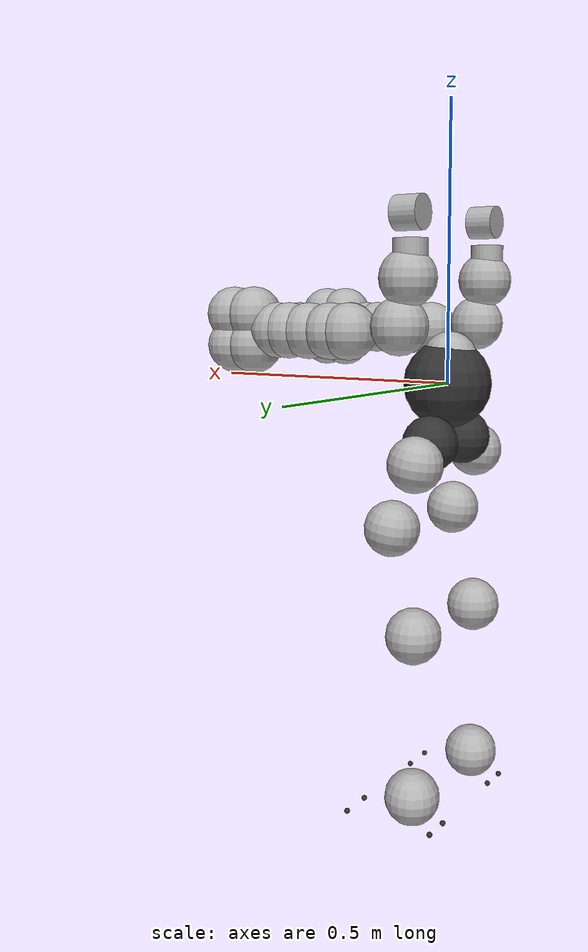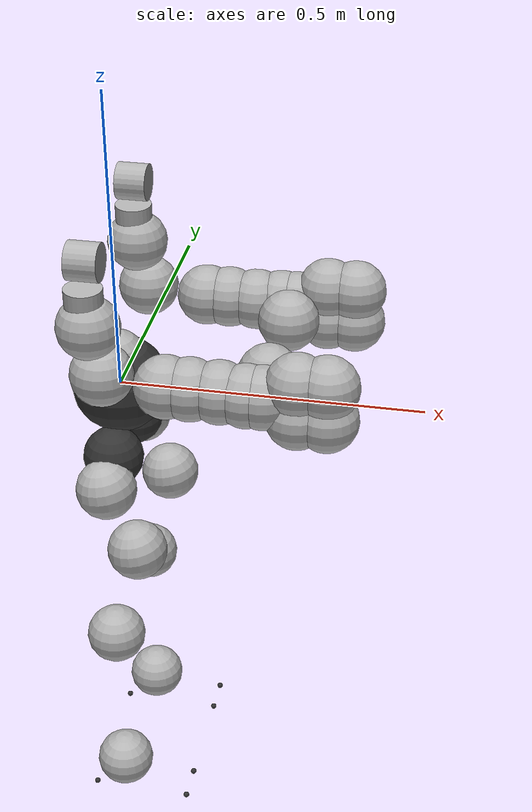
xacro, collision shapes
<robot name="g1_29dof_with_hand_rev_1_0">
  <material name="dark">
    <color rgba="0.2 0.2 0.2 1" />
  </material>
  <material name="white">
    <color rgba="0.7 0.7 0.7 1" />
  </material>

  <mujoco>
    <compiler meshdir="meshes" discardvisual="false" />
  </mujoco>

  <link name="base_link" />
  <joint name="base_joint" type="fixed">
    <parent link="base_link" />
    <child link="pelvis" />
    <origin xyz="0 0 0" rpy="0 0 0" />
  </joint>

  <link name="pelvis">
    <inertial>
      <origin xyz="0 0 -0.07605" rpy="0 0 0" />
      <mass value="3.813" />
      <inertia ixx="0.010549" ixy="0" ixz="2.1E-06" iyy="0.0093089" iyz="0" izz="0.0079184" />
    </inertial>
    <visual>
      <origin xyz="0 0 0" rpy="0 0 0" />
      <geometry>
        <mesh filename="package://g1_description/meshes/pelvis.STL" />
      </geometry>
      <material name="dark" />
    </visual>
    <collision>
      <origin xyz="0 0 0" rpy="0 0 0" />
      <geometry>
        <sphere radius="0.08" />
      </geometry>
    </collision>
  </link>

  <link name="pelvis_contour_link">
    <inertial>
      <origin xyz="0 0 0" rpy="0 0 0" />
      <mass value="0.001" />
      <inertia ixx="1e-7" ixy="0" ixz="0" iyy="1e-7" iyz="0" izz="1e-7" />
    </inertial>
    <visual>
      <origin xyz="0 0 0" rpy="0 0 0" />
      <geometry>
        <mesh filename="package://g1_description/meshes/pelvis_contour_link.STL" />
      </geometry>
      <material name="white" />
    </visual>
    <collision>
      <origin xyz="0 0 0" rpy="0 0 0" />
      <geometry>
        <sphere radius="0.05" /></geometry>
    </collision>
  </link>
  <joint name="pelvis_contour_joint" type="fixed">
    <parent link="pelvis" />
    <child link="pelvis_contour_link" />
  </joint>

  <link name="left_hip_pitch_link">
    <inertial>
      <origin xyz="0.002741 0.047791 -0.02606" rpy="0 0 0" />
      <mass value="1.35" />
      <inertia ixx="0.001811" ixy="3.68E-05" ixz="-3.44E-05" iyy="0.0014193" iyz="0.000171" izz="0.0012812" />
    </inertial>
    <visual>
      <origin xyz="0 0 0" rpy="0 0 0" />
      <geometry>
        <mesh filename="package://g1_description/meshes/left_hip_pitch_link.STL" />
      </geometry>
      <material name="dark" />
    </visual>
    <collision>
      <origin xyz="0 0 0" rpy="0 0 0" />
      <geometry>
        <sphere radius="0.05" /></geometry>
    </collision>
  </link>
  <joint name="left_hip_pitch_joint" type="revolute">
    <origin xyz="0 0.064452 -0.1027" rpy="0 0 0" />
    <parent link="pelvis" />
    <child link="left_hip_pitch_link" />
    <axis xyz="0 1 0" />
    <limit lower="-2.5307" upper="2.8798" effort="88" velocity="32" />
  </joint>
  <link name="left_hip_roll_link">
    <inertial>
      <origin xyz="0.029812 -0.001045 -0.087934" rpy="0 0 0" />
      <mass value="1.52" />
      <inertia ixx="0.0023773" ixy="-3.8E-06" ixz="-0.0003908" iyy="0.0024123" iyz="1.84E-05" izz="0.0016595" />
    </inertial>
    <visual>
      <origin xyz="0 0 0" rpy="0 0 0" />
      <geometry>
        <mesh filename="package://g1_description/meshes/left_hip_roll_link.STL" />
      </geometry>
      <material name="white" />
    </visual>
    <collision>
      <origin xyz="0 0 0" rpy="0 0 0" />
      <geometry>
        <sphere radius="0.05" /></geometry>
    </collision>
  </link>
  <joint name="left_hip_roll_joint" type="revolute">
    <origin xyz="0 0.052 -0.030465" rpy="0 -0.1749 0" />
    <parent link="left_hip_pitch_link" />
    <child link="left_hip_roll_link" />
    <axis xyz="1 0 0" />
    <limit lower="-0.5236" upper="2.9671" effort="139" velocity="20" />
  </joint>
  <link name="left_hip_yaw_link">
    <inertial>
      <origin xyz="-0.057709 -0.010981 -0.15078" rpy="0 0 0" />
      <mass value="1.702" />
      <inertia ixx="0.0057774" ixy="-0.0005411" ixz="-0.0023948" iyy="0.0076124" iyz="-0.0007072" izz="0.003149" />
    </inertial>
    <visual>
      <origin xyz="0 0 0" rpy="0 0 0" />
      <geometry>
        <mesh filename="package://g1_description/meshes/left_hip_yaw_link.STL" />
      </geometry>
      <material name="white" />
    </visual>
    <collision>
      <origin xyz="0 0 0" rpy="0 0 0" />
      <geometry>
        <sphere radius="0.05" /></geometry>
    </collision>
  </link>
  <joint name="left_hip_yaw_joint" type="revolute">
    <origin xyz="0.025001 0 -0.12412" rpy="0 0 0" />
    <parent link="left_hip_roll_link" />
    <child link="left_hip_yaw_link" />
    <axis xyz="0 0 1" />
    <limit lower="-2.7576" upper="2.7576" effort="88" velocity="32" />
  </joint>
  <link name="left_knee_link">
    <inertial>
      <origin xyz="0.005457 0.003964 -0.12074" rpy="0 0 0" />
      <mass value="1.932" />
      <inertia ixx="0.011329" ixy="4.82E-05" ixz="-4.49E-05" iyy="0.011277" iyz="-0.0007146" izz="0.0015168" />
    </inertial>
    <visual>
      <origin xyz="0 0 0" rpy="0 0 0" />
      <geometry>
        <mesh filename="package://g1_description/meshes/left_knee_link.STL" />
      </geometry>
      <material name="white" />
    </visual>
    <collision>
      <origin xyz="0 0 0" rpy="0 0 0" />
      <geometry>
        <sphere radius="0.05" /></geometry>
    </collision>
  </link>
  <joint name="left_knee_joint" type="revolute">
    <origin xyz="-0.078273 0.0021489 -0.17734" rpy="0 0.1749 0" />
    <parent link="left_hip_yaw_link" />
    <child link="left_knee_link" />
    <axis xyz="0 1 0" />
    <limit lower="-0.087267" upper="2.8798" effort="139" velocity="20" />
  </joint>
  <link name="left_ankle_pitch_link">
    <inertial>
      <origin xyz="-0.007269 0 0.011137" rpy="0 0 0" />
      <mass value="0.074" />
      <inertia ixx="8.4E-06" ixy="0" ixz="-2.9E-06" iyy="1.89E-05" iyz="0" izz="1.26E-05" />
    </inertial>
    <visual>
      <origin xyz="0 0 0" rpy="0 0 0" />
      <geometry>
        <mesh filename="package://g1_description/meshes/left_ankle_pitch_link.STL" />
      </geometry>
      <material name="white" />
    </visual>
    <collision>
      <origin xyz="0 0 0" rpy="0 0 0" />
      <geometry>
        <sphere radius="0.05" /></geometry>
    </collision>
  </link>
  <joint name="left_ankle_pitch_joint" type="revolute">
    <origin xyz="0 -9.4445E-05 -0.30001" rpy="0 0 0" />
    <parent link="left_knee_link" />
    <child link="left_ankle_pitch_link" />
    <axis xyz="0 1 0" />
    <limit lower="-0.87267" upper="0.5236" effort="35" velocity="30" />
  </joint>
  <link name="left_ankle_roll_link">
    <inertial>
      <origin xyz="0.026505 0 -0.016425" rpy="0 0 0" />
      <mass value="0.608" />
      <inertia ixx="0.0002231" ixy="2E-07" ixz="8.91E-05" iyy="0.0016161" iyz="-1E-07" izz="0.0016667" />
    </inertial>
    <visual>
      <origin xyz="0 0 0" rpy="0 0 0" />
      <geometry>
        <mesh filename="package://g1_description/meshes/left_ankle_roll_link.STL" />
      </geometry>
      <material name="dark" />
    </visual>
    <collision>
      <origin xyz="-0.05 0.025 -0.03" rpy="0 0 0" />
      <geometry>
        <sphere radius="0.005" />
      </geometry>
    </collision>
    <collision>
      <origin xyz="-0.05 -0.025 -0.03" rpy="0 0 0" />
      <geometry>
        <sphere radius="0.005" />
      </geometry>
    </collision>
    <collision>
      <origin xyz="0.12 0.03 -0.03" rpy="0 0 0" />
      <geometry>
        <sphere radius="0.005" />
      </geometry>
    </collision>
    <collision>
      <origin xyz="0.12 -0.03 -0.03" rpy="0 0 0" />
      <geometry>
        <sphere radius="0.005" />
      </geometry>
    </collision>
  </link>
  <joint name="left_ankle_roll_joint" type="revolute">
    <origin xyz="0 0 -0.017558" rpy="0 0 0" />
    <parent link="left_ankle_pitch_link" />
    <child link="left_ankle_roll_link" />
    <axis xyz="1 0 0" />
    <limit lower="-0.2618" upper="0.2618" effort="35" velocity="30" />
  </joint>
  <link name="right_hip_pitch_link">
    <inertial>
      <origin xyz="0.002741 -0.047791 -0.02606" rpy="0 0 0" />
      <mass value="1.35" />
      <inertia ixx="0.001811" ixy="-3.68E-05" ixz="-3.44E-05" iyy="0.0014193" iyz="-0.000171" izz="0.0012812" />
    </inertial>
    <visual>
      <origin xyz="0 0 0" rpy="0 0 0" />
      <geometry>
        <mesh filename="package://g1_description/meshes/right_hip_pitch_link.STL" />
      </geometry>
      <material name="dark" />
    </visual>
    <collision>
      <origin xyz="0 0 0" rpy="0 0 0" />
      <geometry>
        <sphere radius="0.05" /></geometry>
    </collision>
  </link>
  <joint name="right_hip_pitch_joint" type="revolute">
    <origin xyz="0 -0.064452 -0.1027" rpy="0 0 0" />
    <parent link="pelvis" />
    <child link="right_hip_pitch_link" />
    <axis xyz="0 1 0" />
    <limit lower="-2.5307" upper="2.8798" effort="88" velocity="32" />
  </joint>
  <link name="right_hip_roll_link">
    <inertial>
      <origin xyz="0.029812 0.001045 -0.087934" rpy="0 0 0" />
      <mass value="1.52" />
      <inertia ixx="0.0023773" ixy="3.8E-06" ixz="-0.0003908" iyy="0.0024123" iyz="-1.84E-05" izz="0.0016595" />
    </inertial>
    <visual>
      <origin xyz="0 0 0" rpy="0 0 0" />
      <geometry>
        <mesh filename="package://g1_description/meshes/right_hip_roll_link.STL" />
      </geometry>
      <material name="white" />
    </visual>
    <collision>
      <origin xyz="0 0 0" rpy="0 0 0" />
      <geometry>
        <sphere radius="0.05" /></geometry>
    </collision>
  </link>
  <joint name="right_hip_roll_joint" type="revolute">
    <origin xyz="0 -0.052 -0.030465" rpy="0 -0.1749 0" />
    <parent link="right_hip_pitch_link" />
    <child link="right_hip_roll_link" />
    <axis xyz="1 0 0" />
    <limit lower="-2.9671" upper="0.5236" effort="139" velocity="20" />
  </joint>
  <link name="right_hip_yaw_link">
    <inertial>
      <origin xyz="-0.057709 0.010981 -0.15078" rpy="0 0 0" />
      <mass value="1.702" />
      <inertia ixx="0.0057774" ixy="0.0005411" ixz="-0.0023948" iyy="0.0076124" iyz="0.0007072" izz="0.003149" />
    </inertial>
    <visual>
      <origin xyz="0 0 0" rpy="0 0 0" />
      <geometry>
        <mesh filename="package://g1_description/meshes/right_hip_yaw_link.STL" />
      </geometry>
      <material name="white" />
    </visual>
    <collision>
      <origin xyz="0 0 0" rpy="0 0 0" />
      <geometry>
        <sphere radius="0.05" /></geometry>
    </collision>
  </link>
  <joint name="right_hip_yaw_joint" type="revolute">
    <origin xyz="0.025001 0 -0.12412" rpy="0 0 0" />
    <parent link="right_hip_roll_link" />
    <child link="right_hip_yaw_link" />
    <axis xyz="0 0 1" />
    <limit lower="-2.7576" upper="2.7576" effort="88" velocity="32" />
  </joint>
  <link name="right_knee_link">
    <inertial>
      <origin xyz="0.005457 -0.003964 -0.12074" rpy="0 0 0" />
      <mass value="1.932" />
      <inertia ixx="0.011329" ixy="-4.82E-05" ixz="4.49E-05" iyy="0.011277" iyz="0.0007146" izz="0.0015168" />
    </inertial>
    <visual>
      <origin xyz="0 0 0" rpy="0 0 0" />
      <geometry>
        <mesh filename="package://g1_description/meshes/right_knee_link.STL" />
      </geometry>
      <material name="white" />
    </visual>
    <collision>
      <origin xyz="0 0 0" rpy="0 0 0" />
      <geometry>
        <sphere radius="0.05" /></geometry>
    </collision>
  </link>
  <joint name="right_knee_joint" type="revolute">
    <origin xyz="-0.078273 -0.0021489 -0.17734" rpy="0 0.1749 0" />
    <parent link="right_hip_yaw_link" />
    <child link="right_knee_link" />
    <axis xyz="0 1 0" />
    <limit lower="-0.087267" upper="2.8798" effort="139" velocity="20" />
  </joint>
  <link name="right_ankle_pitch_link">
    <inertial>
      <origin xyz="-0.007269 0 0.011137" rpy="0 0 0" />
      <mass value="0.074" />
      <inertia ixx="8.4E-06" ixy="0" ixz="-2.9E-06" iyy="1.89E-05" iyz="0" izz="1.26E-05" />
    </inertial>
    <visual>
      <origin xyz="0 0 0" rpy="0 0 0" />
      <geometry>
        <mesh filename="package://g1_description/meshes/right_ankle_pitch_link.STL" />
      </geometry>
      <material name="white" />
    </visual>
    <collision>
      <origin xyz="0 0 0" rpy="0 0 0" />
      <geometry>
        <sphere radius="0.05" /></geometry>
    </collision>
  </link>
  <joint name="right_ankle_pitch_joint" type="revolute">
    <origin xyz="0 9.4445E-05 -0.30001" rpy="0 0 0" />
    <parent link="right_knee_link" />
    <child link="right_ankle_pitch_link" />
    <axis xyz="0 1 0" />
    <limit lower="-0.87267" upper="0.5236" effort="35" velocity="30" />
  </joint>
  <link name="right_ankle_roll_link">
    <inertial>
      <origin xyz="0.026505 0 -0.016425" rpy="0 0 0" />
      <mass value="0.608" />
      <inertia ixx="0.0002231" ixy="-2E-07" ixz="8.91E-05" iyy="0.0016161" iyz="1E-07" izz="0.0016667" />
    </inertial>
    <visual>
      <origin xyz="0 0 0" rpy="0 0 0" />
      <geometry>
        <mesh filename="package://g1_description/meshes/right_ankle_roll_link.STL" />
      </geometry>
      <material name="dark" />
    </visual>
    <collision>
      <origin xyz="-0.05 0.025 -0.03" rpy="0 0 0" />
      <geometry>
        <sphere radius="0.005" />
      </geometry>
    </collision>
    <collision>
      <origin xyz="-0.05 -0.025 -0.03" rpy="0 0 0" />
      <geometry>
        <sphere radius="0.005" />
      </geometry>
    </collision>
    <collision>
      <origin xyz="0.12 0.03 -0.03" rpy="0 0 0" />
      <geometry>
        <sphere radius="0.005" />
      </geometry>
    </collision>
    <collision>
      <origin xyz="0.12 -0.03 -0.03" rpy="0 0 0" />
      <geometry>
        <sphere radius="0.005" />
      </geometry>
    </collision>
  </link>
  <joint name="right_ankle_roll_joint" type="revolute">
    <origin xyz="0 0 -0.017558" rpy="0 0 0" />
    <parent link="right_ankle_pitch_link" />
    <child link="right_ankle_roll_link" />
    <axis xyz="1 0 0" />
    <limit lower="-0.2618" upper="0.2618" effort="35" velocity="30" />
  </joint>

  <link name="waist_yaw_link">
    <inertial>
      <origin xyz="0.003494 0.000233 0.018034" rpy="0 0 0" />
      <mass value="0.214" />
      <inertia ixx="0.00010673" ixy="2.703E-06" ixz="-7.631E-06" iyy="0.00010422" iyz="-2.01E-07" izz="0.0001625" />
    </inertial>
    <visual>
      <origin xyz="0 0 0" rpy="0 0 0" />
      <geometry>
        <mesh filename="package://g1_description/meshes/waist_yaw_link_rev_1_0.STL" />
      </geometry>
      <material name="white" />
    </visual>
    <collision>
      <origin xyz="0 0 0.02" rpy="0 0 0" />
      <geometry>
        <cylinder radius="0.04" length="0.06" />
      </geometry>
    </collision>
  </link>
  <joint name="waist_yaw_joint" type="revolute">
    <origin xyz="0 0 0" rpy="0 0 0" />
    <parent link="pelvis" />
    <child link="waist_yaw_link" />
    <axis xyz="0 0 1" />
    <limit lower="-2.618" upper="2.618" effort="88" velocity="32" />
  </joint>
  <link name="waist_roll_link">
    <inertial>
      <origin xyz="0 2.3E-05 0" rpy="0 0 0" />
      <mass value="0.086" />
      <inertia ixx="7.079E-06" ixy="0" ixz="0" iyy="6.339E-06" iyz="0" izz="8.245E-06" />
    </inertial>
    <visual>
      <origin xyz="0 0 0" rpy="0 0 0" />
      <geometry>
        <mesh filename="package://g1_description/meshes/waist_roll_link_rev_1_0.STL" />
      </geometry>
      <material name="white" />
    </visual>
    <collision>
      <origin xyz="0 0 0" rpy="1.5707 0 0" />
      <geometry>
        <cylinder radius="0.03" length="0.04" />
      </geometry>
    </collision>
  </link>
  <joint name="waist_roll_joint" type="revolute">
    <origin xyz="-0.0039635 0 0.044" rpy="0 0 0" />
    <parent link="waist_yaw_link" />
    <child link="waist_roll_link" />
    <axis xyz="1 0 0" />
    <limit lower="-0.52" upper="0.52" effort="35" velocity="30" />
  </joint>
  <link name="torso_link">
    <inertial>
      <origin xyz="0.000931 0.000346 0.15082" rpy="0 0 0" />
      <mass value="6.78" />
      <inertia ixx="0.05905" ixy="3.3302E-05" ixz="-0.0017715" iyy="0.047014" iyz="-2.2399E-05" izz="0.025652" />
    </inertial>
    <visual>
      <origin xyz="0 0 0" rpy="0 0 0" />
      <geometry>
        <mesh filename="package://g1_description/meshes/torso_link_rev_1_0.STL" />
      </geometry>
      <material name="white" />
    </visual>
    <collision>
      <origin xyz="0 0 0" rpy="0 0 0" />
      <geometry>
        <sphere radius="0.05" /></geometry>
    </collision>
  </link>
  <joint name="waist_pitch_joint" type="revolute">
    <origin xyz="0 0 0" rpy="0 0 0" />
    <parent link="waist_roll_link" />
    <child link="torso_link" />
    <axis xyz="0 1 0" />
    <limit lower="-0.52" upper="0.52" effort="35" velocity="30" />
  </joint>

  <joint name="logo_joint" type="fixed">
    <origin xyz="0.0039635 0 -0.044" rpy="0 0 0" />
    <parent link="torso_link" />
    <child link="logo_link" />
  </joint>
  <link name="logo_link">
    <inertial>
      <origin xyz="0 0 0" rpy="0 0 0" />
      <mass value="0.001" />
      <inertia ixx="1e-7" ixy="0" ixz="0" iyy="1e-7" iyz="0" izz="1e-7" />
    </inertial>
    <visual>
      <origin xyz="0 0 0" rpy="0 0 0" />
      <geometry>
        <mesh filename="package://g1_description/meshes/logo_link.STL" />
      </geometry>
      <material name="dark" />
    </visual>
    <collision>
      <origin xyz="0 0 0" rpy="0 0 0" />
      <geometry>
        <sphere radius="0.05" /></geometry>
    </collision>
  </link>

  <link name="head_link">
    <inertial>
      <origin xyz="0.005267 0.000299 0.449869" rpy="0 0 0" />
      <mass value="1.036" />
      <inertia ixx="0.004085051" ixy="-2.543E-06" ixz="-6.9455E-05" iyy="0.004185212" iyz="-3.726E-06" izz="0.001807911" />
    </inertial>
    <visual>
      <origin xyz="0 0 0" rpy="0 0 0" />
      <geometry>
        <mesh filename="package://g1_description/meshes/head_link.STL" />
      </geometry>
      <material name="dark" />
    </visual>
    <collision>
      <origin xyz="0 0 0" rpy="0 0 0" />
      <geometry>
        <sphere radius="0.05" /></geometry>
    </collision>
  </link>
  <joint name="head_joint" type="fixed">
    <origin xyz="0.0039635 0 -0.044" rpy="0 0 0" />
    <parent link="torso_link" />
    <child link="head_link" />
  </joint>

  <link name="imu_in_torso" />
  <joint name="imu_in_torso_joint" type="fixed">
    <origin xyz="-0.03959 -0.00224 0.14792" rpy="0 0 0" />
    <parent link="torso_link" />
    <child link="imu_in_torso" />
  </joint>

  <link name="imu_in_pelvis" />
  <joint name="imu_in_pelvis_joint" type="fixed">
    <origin xyz="0.04525 0 -0.08339" rpy="0 0 0" />
    <parent link="pelvis" />
    <child link="imu_in_pelvis" />
  </joint>

  <link name="d435_link" />
  <joint name="d435_joint" type="fixed">
    <origin xyz="0.0576235 0.01753 0.42987" rpy="0 0.8307767239493009 0" />
    <parent link="torso_link" />
    <child link="d435_link" />
  </joint>

  <link name="mid360_link" />
  <joint name="mid360_joint" type="fixed">
    <origin xyz="0.0002835 0.00003 0.41618" rpy="0 0.04014257279586953 0" />
    <parent link="torso_link" />
    <child link="mid360_link" />
  </joint>

  <link name="left_shoulder_pitch_link">
    <inertial>
      <origin xyz="0 0.035892 -0.011628" rpy="0 0 0" />
      <mass value="0.718" />
      <inertia ixx="0.0004291" ixy="-9.2E-06" ixz="6.4E-06" iyy="0.000453" iyz="2.26E-05" izz="0.000423" />
    </inertial>
    <visual>
      <origin xyz="0 0 0" rpy="0 0 0" />
      <geometry>
        <mesh filename="package://g1_description/meshes/left_shoulder_pitch_link.STL" />
      </geometry>
      <material name="white" />
    </visual>
    <collision>
      <origin xyz="0 0.04 -0.01" rpy="0 1.5707963267948966 0" />
      <geometry>
        <cylinder radius="0.03" length="0.05" />
      </geometry>
    </collision>
  </link>
  <joint name="left_shoulder_pitch_joint" type="revolute">
    <origin xyz="0.0039563 0.10022 0.24778" rpy="0.27931 5.4949E-05 -0.00019159" />
    <parent link="torso_link" />
    <child link="left_shoulder_pitch_link" />
    <axis xyz="0 1 0" />
    <limit lower="-3.0892" upper="2.6704" effort="25" velocity="37" />
  </joint>
  <link name="left_shoulder_roll_link">
    <inertial>
      <origin xyz="-0.000227 0.00727 -0.063243" rpy="0 0 0" />
      <mass value="0.643" />
      <inertia ixx="0.0006177" ixy="-1E-06" ixz="8.7E-06" iyy="0.0006912" iyz="-5.3E-06" izz="0.0003894" />
    </inertial>
    <visual>
      <origin xyz="0 0 0" rpy="0 0 0" />
      <geometry>
        <mesh filename="package://g1_description/meshes/left_shoulder_roll_link.STL" />
      </geometry>
      <material name="white" />
    </visual>
    <collision>
      <origin xyz="-0.004 0.006 -0.053" rpy="0 0 0" />
      <geometry>
        <cylinder radius="0.03" length="0.03" />
      </geometry>
    </collision>
  </link>
  <joint name="left_shoulder_roll_joint" type="revolute">
    <origin xyz="0 0.038 -0.013831" rpy="-0.27925 0 0" />
    <parent link="left_shoulder_pitch_link" />
    <child link="left_shoulder_roll_link" />
    <axis xyz="1 0 0" />
    <limit lower="-1.5882" upper="2.2515" effort="25" velocity="37" />
  </joint>
  <link name="left_shoulder_yaw_link">
    <inertial>
      <origin xyz="0.010773 -0.002949 -0.072009" rpy="0 0 0" />
      <mass value="0.734" />
      <inertia ixx="0.0009988" ixy="7.9E-06" ixz="0.0001412" iyy="0.0010605" iyz="-2.86E-05" izz="0.0004354" />
    </inertial>
    <visual>
      <origin xyz="0 0 0" rpy="0 0 0" />
      <geometry>
        <mesh filename="package://g1_description/meshes/left_shoulder_yaw_link.STL" />
      </geometry>
      <material name="white" />
    </visual>
    <collision>
      <origin xyz="0 0 0" rpy="0 0 0" />
      <geometry>
        <sphere radius="0.05" /></geometry>
    </collision>
  </link>
  <joint name="left_shoulder_yaw_joint" type="revolute">
    <origin xyz="0 0.00624 -0.1032" rpy="0 0 0" />
    <parent link="left_shoulder_roll_link" />
    <child link="left_shoulder_yaw_link" />
    <axis xyz="0 0 1" />
    <limit lower="-2.618" upper="2.618" effort="25" velocity="37" />
  </joint>
  <link name="left_elbow_link">
    <inertial>
      <origin xyz="0.064956 0.004454 -0.010062" rpy="0 0 0" />
      <mass value="0.6" />
      <inertia ixx="0.0002891" ixy="6.53E-05" ixz="1.72E-05" iyy="0.0004152" iyz="-5.6E-06" izz="0.0004197" />
    </inertial>
    <visual>
      <origin xyz="0 0 0" rpy="0 0 0" />
      <geometry>
        <mesh filename="package://g1_description/meshes/left_elbow_link.STL" />
      </geometry>
      <material name="white" />
    </visual>
    <collision>
      <origin xyz="0 0 0" rpy="0 0 0" />
      <geometry>
        <sphere radius="0.05" /></geometry>
    </collision>
  </link>
  <joint name="left_elbow_joint" type="revolute">
    <origin xyz="0.015783 0 -0.080518" rpy="0 0 0" />
    <parent link="left_shoulder_yaw_link" />
    <child link="left_elbow_link" />
    <axis xyz="0 1 0" />
    <limit lower="-1.0472" upper="2.0944" effort="25" velocity="37" />
  </joint>
  <joint name="left_wrist_roll_joint" type="revolute">
    <origin xyz="0.100 0.00188791 -0.010" rpy="0 0 0" />
    <axis xyz="1 0 0" />
    <parent link="left_elbow_link" />
    <child link="left_wrist_roll_link" />
    <limit effort="25" velocity="37" lower="-1.972222054" upper="1.972222054" />
  </joint>
  <link name="left_wrist_roll_link">
    <inertial>
      <origin xyz="0.01713944778 0.00053759094 0.00000048864" rpy="0 0 0" />
      <mass value="0.08544498" />
      <inertia ixx="0.00004821544023" ixy="-0.00000424511021" ixz="0.00000000510599" iyy="0.00003722899093" iyz="-0.00000000123525" izz="0.00005482106541" />
    </inertial>
    <visual>
      <origin xyz="0 0 0" rpy="0 0 0" />
      <geometry>
        <mesh filename="package://g1_description/meshes/left_wrist_roll_link.STL" />
      </geometry>
      <material name="white" />
    </visual>
    <collision>
      <origin xyz="0 0 0" rpy="0 0 0" />
      <geometry>
        <sphere radius="0.05" /></geometry>
    </collision>
  </link>
  <joint name="left_wrist_pitch_joint" type="revolute">
    <origin xyz="0.038 0 0" rpy="0 0 0" />
    <axis xyz="0 1 0" />
    <parent link="left_wrist_roll_link" />
    <child link="left_wrist_pitch_link" />
    <limit effort="5" velocity="22" lower="-1.614429558" upper="1.614429558" />
  </joint>
  <link name="left_wrist_pitch_link">
    <inertial>
      <origin xyz="0.02299989837 -0.00111685314 -0.00111658096" rpy="0 0 0" />
      <mass value="0.48404956" />
      <inertia ixx="0.00016579646273" ixy="-0.00001231206746" ixz="0.00001231699194" iyy="0.00042954057410" iyz="0.00000081417712" izz="0.00042953697654" />
    </inertial>
    <visual>
      <origin xyz="0 0 0" rpy="0 0 0" />
      <geometry>
        <mesh filename="package://g1_description/meshes/left_wrist_pitch_link.STL" />
      </geometry>
      <material name="white" />
    </visual>
    <collision>
      <origin xyz="0 0 0" rpy="0 0 0" />
      <geometry>
        <sphere radius="0.05" /></geometry>
    </collision>
  </link>
  <joint name="left_wrist_yaw_joint" type="revolute">
    <origin xyz="0.046 0 0" rpy="0 0 0" />
    <axis xyz="0 0 1" />
    <parent link="left_wrist_pitch_link" />
    <child link="left_wrist_yaw_link" />
    <limit effort="5" velocity="22" lower="-1.614429558" upper="1.614429558" />
  </joint>
  <link name="left_wrist_yaw_link">
    <inertial>
      <origin xyz="0.02200381568 0.00049485096 0.00053861123" rpy="0 0 0" />
      <mass value="0.08457647" />
      <inertia ixx="0.00004929128828" ixy="-0.00000045735494" ixz="0.00000445867591" iyy="0.00005973338134" iyz="0.00000043217198" izz="0.00003928083826" />
    </inertial>
    <visual>
      <origin xyz="0 0 0" rpy="0 0 0" />
      <geometry>
        <mesh filename="package://g1_description/meshes/left_wrist_yaw_link.STL" />
      </geometry>
      <material name="white" />
    </visual>
    <collision>
      <origin xyz="0 0 0" rpy="0 0 0" />
      <geometry>
        <sphere radius="0.05" /></geometry>
    </collision>
  </link>
  <joint name="left_hand_palm_joint" type="fixed">
    <origin xyz="0.0415 0.003 0" rpy="0 0 0" />
    <parent link="left_wrist_yaw_link" />
    <child link="left_hand_palm_link" />
  </joint>
  <link name="left_hand_palm_link">
    <inertial>
      <origin xyz="0.06214634836 -0.00050869656 -0.00058171093" rpy="0 0 0" />
      <mass value="0.37283854" />
      <inertia ixx="0.00027535181027" ixy="-0.00001595519465" ixz="-0.00000242161890" iyy="0.00053951827219" iyz="-0.00000042279435" izz="0.00039623390907" />
    </inertial>
    <visual>
      <origin xyz="0 0 0" rpy="0 0 0" />
      <geometry>
        <mesh filename="package://g1_description/meshes/left_hand_palm_link.STL" />
      </geometry>
      <material name="white" />
    </visual>
    <collision>
      <origin xyz="0 0 0" rpy="0 0 0" />
      <geometry>
        <sphere radius="0.05" /></geometry>
    </collision>
  </link>
  <joint name="left_hand_thumb_0_joint" type="revolute">
    <origin xyz="0.0255 0 0" rpy="0 0 0" />
    <axis xyz="0 1 0" />
    <parent link="left_hand_palm_link" />
    <child link="left_hand_thumb_0_link" />
    <limit effort="2.45" velocity="3.14" lower="-1.04719755" upper="1.04719755" />
  </joint>
  <link name="left_hand_thumb_0_link">
    <inertial>
      <origin xyz="-0.00088424580 -0.00863407079 0.00094429336" rpy="0 0 0" />
      <mass value="0.08623657" />
      <inertia ixx="0.00001602919238" ixy="0.00000010683177" ixz="0.00000016728875" iyy="0.00001451795012" iyz="-0.00000051094752" izz="0.00001637877663" />
    </inertial>
    <visual>
      <origin xyz="0 0 0" rpy="0 0 0" />
      <geometry>
        <mesh filename="package://g1_description/meshes/left_hand_thumb_0_link.STL" />
      </geometry>
      <material name="white" />
    </visual>
    <collision>
      <origin xyz="0 0 0" rpy="0 0 0" />
      <geometry>
        <sphere radius="0.05" /></geometry>
    </collision>
  </link>
  <joint name="left_hand_thumb_1_joint" type="revolute">
    <origin xyz="-0.0025 -0.0193 0" rpy="0 0 0" />
    <axis xyz="0 0 1" />
    <parent link="left_hand_thumb_0_link" />
    <child link="left_hand_thumb_1_link" />
    <limit effort="1.4" velocity="12" lower="-0.61086523" upper="1.04719755" />
  </joint>
  <link name="left_hand_thumb_1_link">
    <inertial>
      <origin xyz="-0.00082788768 -0.03547435774 -0.00038089960" rpy="0 0 0" />
      <mass value="0.05885070" />
      <inertia ixx="0.00001274699945" ixy="-0.00000050770784" ixz="0.00000016088850" iyy="0.00000601573947" iyz="-0.00000027839003" izz="0.00001234543582" />
    </inertial>
    <visual>
      <origin xyz="0 0 0" rpy="0 0 0" />
      <geometry>
        <mesh filename="package://g1_description/meshes/left_hand_thumb_1_link.STL" />
      </geometry>
      <material name="white" />
    </visual>
    <collision>
      <origin xyz="-0.001 -0.032 0" rpy="0 0 0" />
      <geometry>
        <box size="0.02 0.03 0.02" />
      </geometry>
    </collision>
  </link>
  <joint name="left_hand_thumb_2_joint" type="revolute">
    <origin xyz="0 -0.0458 0" rpy="0 0 0" />
    <axis xyz="0 0 1" />
    <parent link="left_hand_thumb_1_link" />
    <child link="left_hand_thumb_2_link" />
    <limit effort="1.4" velocity="12" lower="0" upper="1.74532925" />
  </joint>
  <link name="left_hand_thumb_2_link">
    <inertial>
      <origin xyz="-0.00171735242 -0.02628192939 0.00010778879" rpy="0 0 0" />
      <mass value="0.02030626" />
      <inertia ixx="0.00000461267817" ixy="-0.00000003422130" ixz="-0.00000000823881" iyy="0.00000153561368" iyz="-0.00000002549885" izz="0.00000386625776" />
    </inertial>
    <visual>
      <origin xyz="0 0 0" rpy="0 0 0" />
      <geometry>
        <mesh filename="package://g1_description/meshes/left_hand_thumb_2_link.STL" />
      </geometry>
      <material name="white" />
    </visual>
    <collision>
      <origin xyz="0 0 0" rpy="0 0 0" />
      <geometry>
        <sphere radius="0.05" /></geometry>
    </collision>
  </link>
  <joint name="left_hand_middle_0_joint" type="revolute">
    <origin xyz="0.0777 0.0016 -0.0285" rpy="0 0 0" />
    <axis xyz="0 0 1" />
    <parent link="left_hand_palm_link" />
    <child link="left_hand_middle_0_link" />
    <limit effort="1.4" velocity="12" lower="-1.57079632" upper="0" />
  </joint>
  <link name="left_hand_middle_0_link">
    <inertial>
      <origin xyz="0.03547435774 0.00082788768 0.00038089960" rpy="0 0 0" />
      <mass value="0.05885070" />
      <inertia ixx="0.00000601573947" ixy="-0.00000050770784" ixz="-0.00000027839003" iyy="0.00001274699945" iyz="0.00000016088850" izz="0.00001234543582" />
    </inertial>
    <visual>
      <origin xyz="0 0 0" rpy="0 0 0" />
      <geometry>
        <mesh filename="package://g1_description/meshes/left_hand_middle_0_link.STL" />
      </geometry>
      <material name="white" />
    </visual>
    <collision>
      <origin xyz="0 0 0" rpy="0 0 0" />
      <geometry>
        <sphere radius="0.05" /></geometry>
    </collision>
  </link>
  <joint name="left_hand_middle_1_joint" type="revolute">
    <origin xyz="0.0458 0 0" rpy="0 0 0" />
    <axis xyz="0 0 1" />
    <parent link="left_hand_middle_0_link" />
    <child link="left_hand_middle_1_link" />
    <limit effort="1.4" velocity="12" lower="-1.74532925" upper="0" />
  </joint>
  <link name="left_hand_middle_1_link">
    <inertial>
      <origin xyz="0.02628192939 0.00171735242 -0.00010778879" rpy="0 0 0" />
      <mass value="0.02030626" />
      <inertia ixx="0.00000153561368" ixy="-0.00000003422130" ixz="-0.00000002549885" iyy="0.00000461267817" iyz="-0.00000000823881" izz="0.00000386625776" />
    </inertial>
    <visual>
      <origin xyz="0 0 0" rpy="0 0 0" />
      <geometry>
        <mesh filename="package://g1_description/meshes/left_hand_middle_1_link.STL" />
      </geometry>
      <material name="white" />
    </visual>
    <collision>
      <origin xyz="0 0 0" rpy="0 0 0" />
      <geometry>
        <sphere radius="0.05" /></geometry>
    </collision>
  </link>
  <joint name="left_hand_index_0_joint" type="revolute">
    <origin xyz="0.0777 0.0016 0.0285" rpy="0 0 0" />
    <axis xyz="0 0 1" />
    <parent link="left_hand_palm_link" />
    <child link="left_hand_index_0_link" />
    <limit effort="1.4" velocity="12" lower="-1.57079632" upper="0" />
  </joint>
  <link name="left_hand_index_0_link">
    <inertial>
      <origin xyz="0.03547435774 0.00082788768 0.00038089960" rpy="0 0 0" />
      <mass value="0.05885070" />
      <inertia ixx="0.00000601573947" ixy="-0.00000050770784" ixz="-0.00000027839003" iyy="0.00001274699945" iyz="0.00000016088850" izz="0.00001234543582" />
    </inertial>
    <visual>
      <origin xyz="0 0 0" rpy="0 0 0" />
      <geometry>
        <mesh filename="package://g1_description/meshes/left_hand_index_0_link.STL" />
      </geometry>
      <material name="white" />
    </visual>
    <collision>
      <origin xyz="0 0 0" rpy="0 0 0" />
      <geometry>
        <sphere radius="0.05" /></geometry>
    </collision>
  </link>
  <joint name="left_hand_index_1_joint" type="revolute">
    <origin xyz="0.0458 0 0" rpy="0 0 0" />
    <axis xyz="0 0 1" />
    <parent link="left_hand_index_0_link" />
    <child link="left_hand_index_1_link" />
    <limit effort="1.4" velocity="12" lower="-1.74532925" upper="0" />
  </joint>
  <link name="left_hand_index_1_link">
    <inertial>
      <origin xyz="0.02628192939 0.00171735242 -0.00010778879" rpy="0 0 0" />
      <mass value="0.02030626" />
      <inertia ixx="0.00000153561368" ixy="-0.00000003422130" ixz="-0.00000002549885" iyy="0.00000461267817" iyz="-0.00000000823881" izz="0.00000386625776" />
    </inertial>
    <visual>
      <origin xyz="0 0 0" rpy="0 0 0" />
      <geometry>
        <mesh filename="package://g1_description/meshes/left_hand_index_1_link.STL" />
      </geometry>
      <material name="white" />
    </visual>
    <collision>
      <origin xyz="0 0 0" rpy="0 0 0" />
      <geometry>
        <sphere radius="0.05" /></geometry>
    </collision>
  </link>
  <link name="right_shoulder_pitch_link">
    <inertial>
      <origin xyz="0 -0.035892 -0.011628" rpy="0 0 0" />
      <mass value="0.718" />
      <inertia ixx="0.0004291" ixy="9.2E-06" ixz="6.4E-06" iyy="0.000453" iyz="-2.26E-05" izz="0.000423" />
    </inertial>
    <visual>
      <origin xyz="0 0 0" rpy="0 0 0" />
      <geometry>
        <mesh filename="package://g1_description/meshes/right_shoulder_pitch_link.STL" />
      </geometry>
      <material name="white" />
    </visual>
    <collision>
      <origin xyz="0 -0.04 -0.01" rpy="0 1.5707963267948966 0" />
      <geometry>
        <cylinder radius="0.03" length="0.05" />
      </geometry>
    </collision>
  </link>
  <joint name="right_shoulder_pitch_joint" type="revolute">
    <origin xyz="0.0039563 -0.10021 0.24778" rpy="-0.27931 5.4949E-05 0.00019159" />
    <parent link="torso_link" />
    <child link="right_shoulder_pitch_link" />
    <axis xyz="0 1 0" />
    <limit lower="-3.0892" upper="2.6704" effort="25" velocity="37" />
  </joint>
  <link name="right_shoulder_roll_link">
    <inertial>
      <origin xyz="-0.000227 -0.00727 -0.063243" rpy="0 0 0" />
      <mass value="0.643" />
      <inertia ixx="0.0006177" ixy="1E-06" ixz="8.7E-06" iyy="0.0006912" iyz="5.3E-06" izz="0.0003894" />
    </inertial>
    <visual>
      <origin xyz="0 0 0" rpy="0 0 0" />
      <geometry>
        <mesh filename="package://g1_description/meshes/right_shoulder_roll_link.STL" />
      </geometry>
      <material name="white" />
    </visual>
    <collision>
      <origin xyz="-0.004 -0.006 -0.053" rpy="0 0 0" />
      <geometry>
        <cylinder radius="0.03" length="0.03" />
      </geometry>
    </collision>
  </link>
  <joint name="right_shoulder_roll_joint" type="revolute">
    <origin xyz="0 -0.038 -0.013831" rpy="0.27925 0 0" />
    <parent link="right_shoulder_pitch_link" />
    <child link="right_shoulder_roll_link" />
    <axis xyz="1 0 0" />
    <limit lower="-2.2515" upper="1.5882" effort="25" velocity="37" />
  </joint>
  <link name="right_shoulder_yaw_link">
    <inertial>
      <origin xyz="0.010773 0.002949 -0.072009" rpy="0 0 0" />
      <mass value="0.734" />
      <inertia ixx="0.0009988" ixy="-7.9E-06" ixz="0.0001412" iyy="0.0010605" iyz="2.86E-05" izz="0.0004354" />
    </inertial>
    <visual>
      <origin xyz="0 0 0" rpy="0 0 0" />
      <geometry>
        <mesh filename="package://g1_description/meshes/right_shoulder_yaw_link.STL" />
      </geometry>
      <material name="white" />
    </visual>
    <collision>
      <origin xyz="0 0 0" rpy="0 0 0" />
      <geometry>
        <sphere radius="0.05" /></geometry>
    </collision>
  </link>
  <joint name="right_shoulder_yaw_joint" type="revolute">
    <origin xyz="0 -0.00624 -0.1032" rpy="0 0 0" />
    <parent link="right_shoulder_roll_link" />
    <child link="right_shoulder_yaw_link" />
    <axis xyz="0 0 1" />
    <limit lower="-2.618" upper="2.618" effort="25" velocity="37" />
  </joint>
  <link name="right_elbow_link">
    <inertial>
      <origin xyz="0.064956 -0.004454 -0.010062" rpy="0 0 0" />
      <mass value="0.6" />
      <inertia ixx="0.0002891" ixy="-6.53E-05" ixz="1.72E-05" iyy="0.0004152" iyz="5.6E-06" izz="0.0004197" />
    </inertial>
    <visual>
      <origin xyz="0 0 0" rpy="0 0 0" />
      <geometry>
        <mesh filename="package://g1_description/meshes/right_elbow_link.STL" />
      </geometry>
      <material name="white" />
    </visual>
    <collision>
      <origin xyz="0 0 0" rpy="0 0 0" />
      <geometry>
        <sphere radius="0.05" /></geometry>
    </collision>
  </link>
  <joint name="right_elbow_joint" type="revolute">
    <origin xyz="0.015783 0 -0.080518" rpy="0 0 0" />
    <parent link="right_shoulder_yaw_link" />
    <child link="right_elbow_link" />
    <axis xyz="0 1 0" />
    <limit lower="-1.0472" upper="2.0944" effort="25" velocity="37" />
  </joint>
  <joint name="right_wrist_roll_joint" type="revolute">
    <origin xyz="0.100 -0.00188791 -0.010" rpy="0 0 0" />
    <axis xyz="1 0 0" />
    <parent link="right_elbow_link" />
    <child link="right_wrist_roll_link" />
    <limit effort="25" velocity="37" lower="-1.972222054" upper="1.972222054" />
  </joint>
  <link name="right_wrist_roll_link">
    <inertial>
      <origin xyz="0.01713944778 -0.00053759094 0.00000048864" rpy="0 0 0" />
      <mass value="0.08544498" />
      <inertia ixx="0.00004821544023" ixy="0.00000424511021" ixz="0.00000000510599" iyy="0.00003722899093" iyz="0.00000000123525" izz="0.00005482106541" />
    </inertial>
    <visual>
      <origin xyz="0 0 0" rpy="0 0 0" />
      <geometry>
        <mesh filename="package://g1_description/meshes/right_wrist_roll_link.STL" />
      </geometry>
      <material name="white" />
    </visual>
    <collision>
      <origin xyz="0 0 0" rpy="0 0 0" />
      <geometry>
        <sphere radius="0.05" /></geometry>
    </collision>
  </link>
  <joint name="right_wrist_pitch_joint" type="revolute">
    <origin xyz="0.038 0 0" rpy="0 0 0" />
    <axis xyz="0 1 0" />
    <parent link="right_wrist_roll_link" />
    <child link="right_wrist_pitch_link" />
    <limit effort="5" velocity="22" lower="-1.614429558" upper="1.614429558" />
  </joint>
  <link name="right_wrist_pitch_link">
    <inertial>
      <origin xyz="0.02299989837 0.00111685314 -0.00111658096" rpy="0 0 0" />
      <mass value="0.48404956" />
      <inertia ixx="0.00016579646273" ixy="0.00001231206746" ixz="0.00001231699194" iyy="0.00042954057410" iyz="-0.00000081417712" izz="0.00042953697654" />
    </inertial>
    <visual>
      <origin xyz="0 0 0" rpy="0 0 0" />
      <geometry>
        <mesh filename="package://g1_description/meshes/right_wrist_pitch_link.STL" />
      </geometry>
      <material name="white" />
    </visual>
    <collision>
      <origin xyz="0 0 0" rpy="0 0 0" />
      <geometry>
        <sphere radius="0.05" /></geometry>
    </collision>
  </link>
  <joint name="right_wrist_yaw_joint" type="revolute">
    <origin xyz="0.046 0 0" rpy="0 0 0" />
    <axis xyz="0 0 1" />
    <parent link="right_wrist_pitch_link" />
    <child link="right_wrist_yaw_link" />
    <limit effort="5" velocity="22" lower="-1.614429558" upper="1.614429558" />
  </joint>
  <link name="right_wrist_yaw_link">
    <inertial>
      <origin xyz="0.02200381568 -0.00049485096 0.00053861123" rpy="0 0 0" />
      <mass value="0.08457647" />
      <inertia ixx="0.00004929128828" ixy="0.00000045735494" ixz="0.00000445867591" iyy="0.00005973338134" iyz="-0.00000043217198" izz="0.00003928083826" />
    </inertial>
    <visual>
      <origin xyz="0 0 0" rpy="0 0 0" />
      <geometry>
        <mesh filename="package://g1_description/meshes/right_wrist_yaw_link.STL" />
      </geometry>
      <material name="white" />
    </visual>
    <collision>
      <origin xyz="0 0 0" rpy="0 0 0" />
      <geometry>
        <sphere radius="0.05" /></geometry>
    </collision>
  </link>
  <joint name="right_hand_palm_joint" type="fixed">
    <origin xyz="0.0415 -0.003 0" rpy="0 0 0" />
    <parent link="right_wrist_yaw_link" />
    <child link="right_hand_palm_link" />
  </joint>
  <link name="right_hand_palm_link">
    <inertial>
      <origin xyz="0.06214634836 0.00050869656 -0.00058171093" rpy="0 0 0" />
      <mass value="0.37283854" />
      <inertia ixx="0.00027535181027" ixy="0.00001595519465" ixz="-0.00000242161890" iyy="0.00053951827219" iyz="0.00000042279435" izz="0.00039623390907" />
    </inertial>
    <visual>
      <origin xyz="0 0 0" rpy="0 0 0" />
      <geometry>
        <mesh filename="package://g1_description/meshes/right_hand_palm_link.STL" />
      </geometry>
      <material name="white" />
    </visual>
    <collision>
      <origin xyz="0 0 0" rpy="0 0 0" />
      <geometry>
        <sphere radius="0.05" /></geometry>
    </collision>
  </link>
  <joint name="right_hand_thumb_0_joint" type="revolute">
    <origin xyz="0.0255 0 0" rpy="0 0 0" />
    <axis xyz="0 1 0" />
    <parent link="right_hand_palm_link" />
    <child link="right_hand_thumb_0_link" />
    <limit effort="2.45" velocity="3.14" lower="-1.04719755" upper="1.04719755" />
  </joint>
  <link name="right_hand_thumb_0_link">
    <inertial>
      <origin xyz="-0.00088424580 0.00863407079 0.00094429336" rpy="0 0 0" />
      <mass value="0.08623657" />
      <inertia ixx="0.00001602919238" ixy="-0.00000010683177" ixz="0.00000016728875" iyy="0.00001451795012" iyz="0.00000051094752" izz="0.00001637877663" />
    </inertial>
    <visual>
      <origin xyz="0 0 0" rpy="0 0 0" />
      <geometry>
        <mesh filename="package://g1_description/meshes/right_hand_thumb_0_link.STL" />
      </geometry>
      <material name="white" />
    </visual>
    <collision>
      <origin xyz="0 0 0" rpy="0 0 0" />
      <geometry>
        <sphere radius="0.05" /></geometry>
    </collision>
  </link>
  <joint name="right_hand_thumb_1_joint" type="revolute">
    <origin xyz="-0.0025 0.0193 0" rpy="0 0 0" />
    <axis xyz="0 0 1" />
    <parent link="right_hand_thumb_0_link" />
    <child link="right_hand_thumb_1_link" />
    <limit effort="1.4" velocity="12" lower="-1.04719755" upper="0.61086523" />
  </joint>
  <link name="right_hand_thumb_1_link">
    <inertial>
      <origin xyz="-0.00082788768 0.03547435774 -0.00038089960" rpy="0 0 0" />
      <mass value="0.05885070" />
      <inertia ixx="0.00001274699945" ixy="0.00000050770784" ixz="0.00000016088850" iyy="0.00000601573947" iyz="0.00000027839003" izz="0.00001234543582" />
    </inertial>
    <visual>
      <origin xyz="0 0 0" rpy="0 0 0" />
      <geometry>
        <mesh filename="package://g1_description/meshes/right_hand_thumb_1_link.STL" />
      </geometry>
      <material name="white" />
    </visual>
    <collision>
      <origin xyz="-0.001 0.032 0" rpy="0 0 0" />
      <geometry>
        <box size="0.02 0.03 0.02" />
      </geometry>
    </collision>
  </link>
  <joint name="right_hand_thumb_2_joint" type="revolute">
    <origin xyz="0 0.0458 0" rpy="0 0 0" />
    <axis xyz="0 0 1" />
    <parent link="right_hand_thumb_1_link" />
    <child link="right_hand_thumb_2_link" />
    <limit effort="1.4" velocity="12" lower="-1.74532925" upper="0" />
  </joint>
  <link name="right_hand_thumb_2_link">
    <inertial>
      <origin xyz="-0.00171735242 0.02628192939 0.00010778879" rpy="0 0 0" />
      <mass value="0.02030626" />
      <inertia ixx="0.00000461267817" ixy="0.00000003422130" ixz="-0.00000000823881" iyy="0.00000153561368" iyz="0.00000002549885" izz="0.00000386625776" />
    </inertial>
    <visual>
      <origin xyz="0 0 0" rpy="0 0 0" />
      <geometry>
        <mesh filename="package://g1_description/meshes/right_hand_thumb_2_link.STL" />
      </geometry>
      <material name="white" />
    </visual>
    <collision>
      <origin xyz="0 0 0" rpy="0 0 0" />
      <geometry>
        <sphere radius="0.05" /></geometry>
    </collision>
  </link>
  <joint name="right_hand_middle_0_joint" type="revolute">
    <origin xyz="0.0777 -0.0016 -0.0285" rpy="0 0 0" />
    <axis xyz="0 0 1" />
    <parent link="right_hand_palm_link" />
    <child link="right_hand_middle_0_link" />
    <limit effort="1.4" velocity="12" lower="0" upper="1.57079632" />
  </joint>
  <link name="right_hand_middle_0_link">
    <inertial>
      <origin xyz="0.03547435774 -0.00082788768 0.00038089960" rpy="0 0 0" />
      <mass value="0.05885070" />
      <inertia ixx="0.00000601573947" ixy="0.00000050770784" ixz="-0.00000027839003" iyy="0.00001274699945" iyz="-0.00000016088850" izz="0.00001234543582" />
    </inertial>
    <visual>
      <origin xyz="0 0 0" rpy="0 0 0" />
      <geometry>
        <mesh filename="package://g1_description/meshes/right_hand_middle_0_link.STL" />
      </geometry>
      <material name="white" />
    </visual>
    <collision>
      <origin xyz="0 0 0" rpy="0 0 0" />
      <geometry>
        <sphere radius="0.05" /></geometry>
    </collision>
  </link>
  <joint name="right_hand_middle_1_joint" type="revolute">
    <origin xyz="0.0458 0 0" rpy="0 0 0" />
    <axis xyz="0 0 1" />
    <parent link="right_hand_middle_0_link" />
    <child link="right_hand_middle_1_link" />
    <limit effort="1.4" velocity="12" lower="0" upper="1.74532925" />
  </joint>
  <link name="right_hand_middle_1_link">
    <inertial>
      <origin xyz="0.02628192939 -0.00171735242 -0.00010778879" rpy="0 0 0" />
      <mass value="0.02030626" />
      <inertia ixx="0.00000153561368" ixy="0.00000003422130" ixz="-0.00000002549885" iyy="0.00000461267817" iyz="0.00000000823881" izz="0.00000386625776" />
    </inertial>
    <visual>
      <origin xyz="0 0 0" rpy="0 0 0" />
      <geometry>
        <mesh filename="package://g1_description/meshes/right_hand_middle_1_link.STL" />
      </geometry>
      <material name="white" />
    </visual>
    <collision>
      <origin xyz="0 0 0" rpy="0 0 0" />
      <geometry>
        <sphere radius="0.05" /></geometry>
    </collision>
  </link>
  <joint name="right_hand_index_0_joint" type="revolute">
    <origin xyz="0.0777 -0.0016 0.0285" rpy="0 0 0" />
    <axis xyz="0 0 1" />
    <parent link="right_hand_palm_link" />
    <child link="right_hand_index_0_link" />
    <limit effort="1.4" velocity="12" lower="0" upper="1.57079632" />
  </joint>
  <link name="right_hand_index_0_link">
    <inertial>
      <origin xyz="0.03547435774 -0.00082788768 0.00038089960" rpy="0 0 0" />
      <mass value="0.05885070" />
      <inertia ixx="0.00000601573947" ixy="0.00000050770784" ixz="-0.00000027839003" iyy="0.00001274699945" iyz="-0.00000016088850" izz="0.00001234543582" />
    </inertial>
    <visual>
      <origin xyz="0 0 0" rpy="0 0 0" />
      <geometry>
        <mesh filename="package://g1_description/meshes/right_hand_index_0_link.STL" />
      </geometry>
      <material name="white" />
    </visual>
    <collision>
      <origin xyz="0 0 0" rpy="0 0 0" />
      <geometry>
        <sphere radius="0.05" /></geometry>
    </collision>
  </link>
  <joint name="right_hand_index_1_joint" type="revolute">
    <origin xyz="0.0458 0 0" rpy="0 0 0" />
    <axis xyz="0 0 1" />
    <parent link="right_hand_index_0_link" />
    <child link="right_hand_index_1_link" />
    <limit effort="1.4" velocity="12" lower="0" upper="1.74532925" />
  </joint>
  <link name="right_hand_index_1_link">
    <inertial>
      <origin xyz="0.02628192939 -0.00171735242 -0.00010778879" rpy="0 0 0" />
      <mass value="0.02030626" />
      <inertia ixx="0.00000153561368" ixy="0.00000003422130" ixz="-0.00000002549885" iyy="0.00000461267817" iyz="0.00000000823881" izz="0.00000386625776" />
    </inertial>
    <visual>
      <origin xyz="0 0 0" rpy="0 0 0" />
      <geometry>
        <mesh filename="package://g1_description/meshes/right_hand_index_1_link.STL" />
      </geometry>
      <material name="white" />
    </visual>
    <collision>
      <origin xyz="0 0 0" rpy="0 0 0" />
      <geometry>
        <sphere radius="0.05" /></geometry>
    </collision>
  </link>
</robot>
